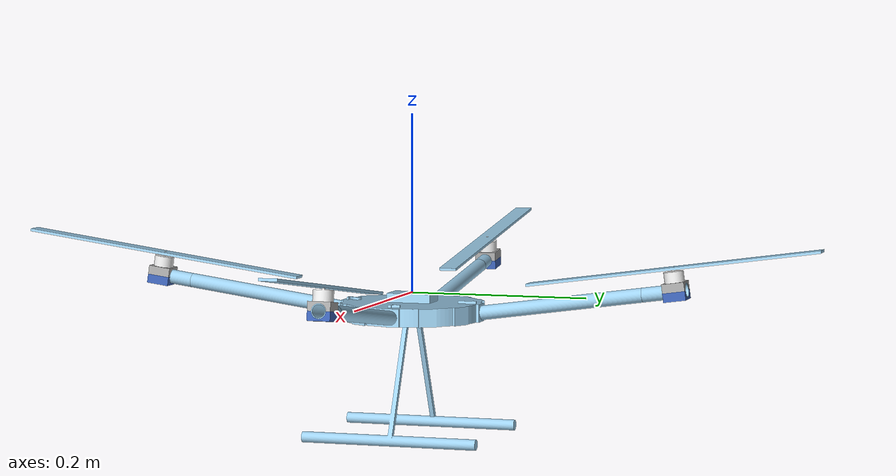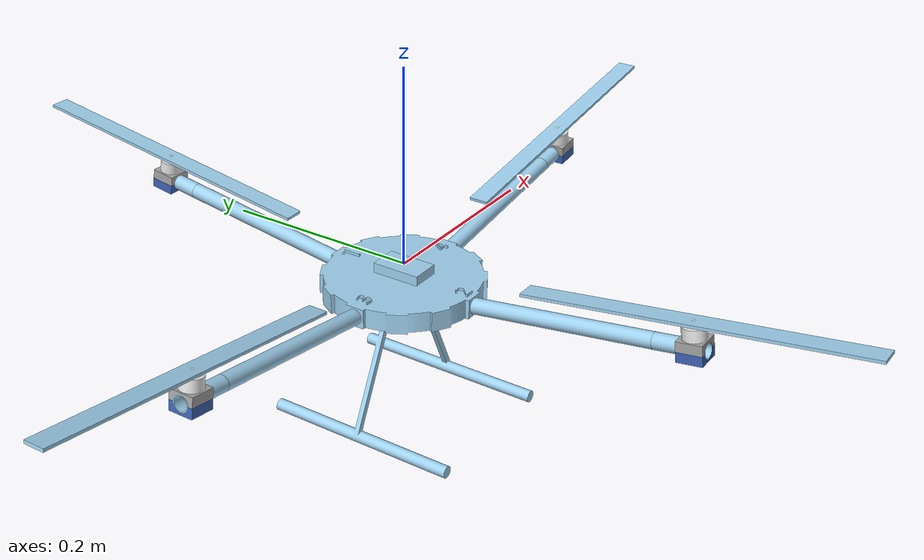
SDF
<?xml version="1.0"?>
<sdf version="1.6">
  <model name="hillstar">
    <link name="quad_plate_arm_subassembly">

      <sensor name="air_pressure_sensor" type="air_pressure">
        <always_on>1</always_on>
        <update_rate>50</update_rate>
        <air_pressure>
          <pressure>
            <noise type="gaussian">
              <mean>0</mean>
              <stddev>0.01</stddev>
            </noise>
          </pressure>
        </air_pressure>
      </sensor>
      <sensor name="imu_sensor" type="imu">
        <parent>quad_plate_arm_subassembly</parent>
        <always_on>1</always_on>
        <update_rate>250</update_rate>
        <imu>
          <angular_velocity>
            <x>
              <noise type="gaussian">
                <mean>0</mean>
                <stddev>0.00018665</stddev>
                <dynamic_bias_stddev>3.8785e-05</dynamic_bias_stddev>
                <dynamic_bias_correlation_time>1000</dynamic_bias_correlation_time>
              </noise>
            </x>
            <y>
              <noise type="gaussian">
                <mean>0</mean>
                <stddev>0.00018665</stddev>
                <dynamic_bias_stddev>3.8785e-05</dynamic_bias_stddev>
                <dynamic_bias_correlation_time>1000</dynamic_bias_correlation_time>
              </noise>
            </y>
            <z>
              <noise type="gaussian">
                <mean>0</mean>
                <stddev>0.00018665</stddev>
                <dynamic_bias_stddev>3.8785e-05</dynamic_bias_stddev>
                <dynamic_bias_correlation_time>1000</dynamic_bias_correlation_time>
              </noise>
            </z>
          </angular_velocity>
          <linear_acceleration>
            <x>
              <noise type="gaussian">
                <mean>0</mean>
                <stddev>0.00186</stddev>
                <dynamic_bias_stddev>0.006</dynamic_bias_stddev>
                <dynamic_bias_correlation_time>300</dynamic_bias_correlation_time>
              </noise>
            </x>
            <y>
              <noise type="gaussian">
                <mean>0</mean>
                <stddev>0.00186</stddev>
                <dynamic_bias_stddev>0.006</dynamic_bias_stddev>
                <dynamic_bias_correlation_time>300</dynamic_bias_correlation_time>
              </noise>
            </y>
            <z>
              <noise type="gaussian">
                <mean>0</mean>
                <stddev>0.00186</stddev>
                <dynamic_bias_stddev>0.006</dynamic_bias_stddev>
                <dynamic_bias_correlation_time>300</dynamic_bias_correlation_time>
              </noise>
            </z>
          </linear_acceleration>
        </imu>
        <plugin name="px4_gazebo_imu_plugin" filename="libgazebo_imu_plugin.so">
          <imu_name>"imu_sensor"</imu_name>
        </plugin>
      </sensor>
      <sensor name="navsat_sensor" type="navsat">
        <parent>quad_plate_arm_subassembly</parent>
        <always_on>1</always_on>
        <update_rate>30</update_rate>
      </sensor>

      <frame name="quad_plate_arm_subassembly_frame">
        <pose>0 0 0 0 -0 0</pose>
      </frame>
      <visual name="quad_plate_arm_subassembly_0_electronics_tray_visual">
        <pose>1.0426410892068930198e-17 1.686536712755228713e-18 -0.010000000000000000208 -1.570796326794896558 2.426671729927918817e-32 -5.8286708792820738094e-16</pose>
        <geometry>
          <mesh>
            <uri>model://hillstar/quad_layout_sdf//electronics_tray.stl</uri>
          </mesh>
        </geometry>
        <material>
          <ambient>0.61568627450980395466 0.81176470588235294379 0.92941176470588238168 1</ambient>
          <diffuse>0.61568627450980395466 0.81176470588235294379 0.92941176470588238168 1</diffuse>
          <specular>0.1 0.1 0.1 1</specular>
          <emissive>0 0 0 0</emissive>
        </material>
      </visual>
      <collision name="quad_plate_arm_subassembly_0_electronics_tray_visual">
        <pose>1.0426410892068930198e-17 1.686536712755228713e-18 -0.010000000000000000208 -1.570796326794896558 2.426671729927918817e-32 -5.8286708792820738094e-16</pose>
        <geometry>
          <mesh>
            <uri>model://hillstar/quad_layout_sdf//electronics_tray.stl</uri>
          </mesh>
        </geometry>
      </collision>

      <visual name="quad_plate_arm_subassembly_1_legs_visual">
        <pose>-2.5459897982298789269e-18 -0.0025000000000000052562 -0.035999999999999927891 1.9428902930940261644e-16 1.7809827686695217859e-16 3.1415926535897926719</pose>
        <geometry>
          <mesh>
            <uri>model://hillstar/quad_layout_sdf//legs.stl</uri>
          </mesh>
        </geometry>
        <material>
          <ambient>0.61568627450980395466 0.81176470588235294379 0.92941176470588238168 1</ambient>
          <diffuse>0.61568627450980395466 0.81176470588235294379 0.92941176470588238168 1</diffuse>
          <specular>0.1 0.1 0.1 1</specular>
          <emissive>0 0 0 0</emissive>
        </material>
      </visual>
      <collision name="quad_plate_arm_subassembly_1_legs_visual">
        <pose>-2.5459897982298789269e-18 -0.0025000000000000052562 -0.035999999999999927891 1.9428902930940261644e-16 1.7809827686695217859e-16 3.1415926535897926719</pose>
        <geometry>
          <mesh>
            <uri>model://hillstar/quad_layout_sdf//legs.stl</uri>
          </mesh>
        </geometry>
      </collision>
      <visual name="quad_plate_arm_subassembly_2_center_plate_visual">
        <pose>-4.429638872090642462e-33 -4.6510602907817071607e-18 -0.010000000000000000208 1.5707963267948990005 -1.1102230246251548148e-16 3.1415926535897926719</pose>
        <geometry>
          <mesh>
            <uri>model://hillstar/quad_layout_sdf//center_plate.stl</uri>
          </mesh>
        </geometry>
        <material>
          <ambient>0.61568627450980395466 0.81176470588235294379 0.92941176470588238168 1</ambient>
          <diffuse>0.61568627450980395466 0.81176470588235294379 0.92941176470588238168 1</diffuse>
          <specular>0.1 0.1 0.1 1</specular>
          <emissive>0 0 0 0</emissive>
        </material>
      </visual>
      <collision name="quad_plate_arm_subassembly_2_center_plate_visual">
        <pose>-4.429638872090642462e-33 -4.6510602907817071607e-18 -0.010000000000000000208 1.5707963267948990005 -1.1102230246251548148e-16 3.1415926535897926719</pose>
        <geometry>
          <mesh>
            <uri>model://hillstar/quad_layout_sdf//center_plate.stl</uri>
          </mesh>
        </geometry>
      </collision>
      <visual name="quad_plate_arm_subassembly_3_arm_tube_visual">
        <pose>0.26369959271719034533 -1.3152048885202173023e-16 0.0057470236776120389374 3.0019663134302465579 2.3592239273284548874e-15 1.570796326794896558</pose>
        <geometry>
          <mesh>
            <uri>model://hillstar/quad_layout_sdf//arm_tube.stl</uri>
          </mesh>
        </geometry>
        <material>
          <ambient>0.61568627450980395466 0.81176470588235294379 0.92941176470588238168 1</ambient>
          <diffuse>0.61568627450980395466 0.81176470588235294379 0.92941176470588238168 1</diffuse>
          <specular>0.1 0.1 0.1 1</specular>
          <emissive>0 0 0 0</emissive>
        </material>
      </visual>
      <collision name="quad_plate_arm_subassembly_3_arm_tube_visual">
        <pose>0.26369959271719034533 -1.3152048885202173023e-16 0.0057470236776120389374 3.0019663134302465579 2.3592239273284548874e-15 1.570796326794896558</pose>
        <geometry>
          <mesh>
            <uri>model://hillstar/quad_layout_sdf//arm_tube.stl</uri>
          </mesh>
        </geometry>
      </collision>
      <visual name="quad_plate_arm_subassembly_4_arm_tube_visual">
        <pose>9.2729227200666873604e-17 0.26369959271719034533 0.0057470236776120458763 3.0019663134302474461 -1.6081226496766373401e-16 3.1415926535897926719</pose>
        <geometry>
          <mesh>
            <uri>model://hillstar/quad_layout_sdf//arm_tube.stl</uri>
          </mesh>
        </geometry>
        <material>
          <ambient>0.61568627450980395466 0.81176470588235294379 0.92941176470588238168 1</ambient>
          <diffuse>0.61568627450980395466 0.81176470588235294379 0.92941176470588238168 1</diffuse>
          <specular>0.1 0.1 0.1 1</specular>
          <emissive>0 0 0 0</emissive>
        </material>
      </visual>
      <collision name="quad_plate_arm_subassembly_4_arm_tube_visual">
        <pose>9.2729227200666873604e-17 0.26369959271719034533 0.0057470236776120458763 3.0019663134302474461 -1.6081226496766373401e-16 3.1415926535897926719</pose>
        <geometry>
          <mesh>
            <uri>model://hillstar/quad_layout_sdf//arm_tube.stl</uri>
          </mesh>
        </geometry>
      </collision>
      <visual name="quad_plate_arm_subassembly_5_arm_tube_visual">
        <pose>-1.125288682431912656e-16 -0.26369959271719034533 0.0057470236776121490924 3.0019663134302465579 2.8327694488239903007e-16 -5.8513504420383324006e-16</pose>
        <geometry>
          <mesh>
            <uri>model://hillstar/quad_layout_sdf//arm_tube.stl</uri>
          </mesh>
        </geometry>
        <material>
          <ambient>0.61568627450980395466 0.81176470588235294379 0.92941176470588238168 1</ambient>
          <diffuse>0.61568627450980395466 0.81176470588235294379 0.92941176470588238168 1</diffuse>
          <specular>0.1 0.1 0.1 1</specular>
          <emissive>0 0 0 0</emissive>
        </material>
      </visual>
      <collision name="quad_plate_arm_subassembly_5_arm_tube_visual">
        <pose>-1.125288682431912656e-16 -0.26369959271719034533 0.0057470236776121490924 3.0019663134302465579 2.8327694488239903007e-16 -5.8513504420383324006e-16</pose>
        <geometry>
          <mesh>
            <uri>model://hillstar/quad_layout_sdf//arm_tube.stl</uri>
          </mesh>
        </geometry>
      </collision>
      <visual name="quad_plate_arm_subassembly_6_arm_tube_visual">
        <pose>-0.26369959271719034533 1.2880560503267202442e-16 0.0057470236776121560313 3.0019663134302465579 -1.3305668935203479585e-16 -1.5707963267948972241</pose>
        <geometry>
          <mesh>
            <uri>model://hillstar/quad_layout_sdf//arm_tube.stl</uri>
          </mesh>
        </geometry>
        <material>
          <ambient>0.61568627450980395466 0.81176470588235294379 0.92941176470588238168 1</ambient>
          <diffuse>0.61568627450980395466 0.81176470588235294379 0.92941176470588238168 1</diffuse>
          <specular>0.1 0.1 0.1 1</specular>
          <emissive>0 0 0 0</emissive>
        </material>
      </visual>
      <collision name="quad_plate_arm_subassembly_6_arm_tube_visual">
        <pose>-0.26369959271719034533 1.2880560503267202442e-16 0.0057470236776121560313 3.0019663134302465579 -1.3305668935203479585e-16 -1.5707963267948972241</pose>
        <geometry>
          <mesh>
            <uri>model://hillstar/quad_layout_sdf//arm_tube.stl</uri>
          </mesh>
        </geometry>
      </collision>
      <inertial>
        <pose frame="quad_plate_arm_subassembly_frame">-6.1462580748651722459e-07 -0.00017942040463946536707 -0.029584627107929153955 0 0 0</pose>
        <mass>0.77207657554993003313</mass>
        <inertia>
          <ixx>0.0031604844513892912591</ixx>
          <ixy>-3.8238647302225609731e-08</ixy>
          <ixz>1.0003578610147444237e-08</ixz>
          <iyy>0.0033332661413842785102</iyy>
          <iyz>-1.7931547486300860873e-05</iyz>
          <izz>0.0043410841365872331055</izz>
        </inertia>
      </inertial>
    </link>
    <link name="motor_subassembly">
      <frame name="motor_subassembly_frame">
        <pose>0 0 0 0 -0 0</pose>
      </frame>
      <visual name="motor_subassembly_0_mount_tube_visual">
        <pose>8.8211977744013656535e-17 0.26369959271719034533 0.0057470236776120311312 -0.13962634015954397682 6.4392935428257951273e-15 -3.1415926535897908956</pose>
        <geometry>
          <mesh>
            <uri>model://hillstar/quad_layout_sdf//mount_tube.stl</uri>
          </mesh>
        </geometry>
        <material>
          <ambient>0.61568627450980395466 0.81176470588235294379 0.92941176470588238168 1</ambient>
          <diffuse>0.61568627450980395466 0.81176470588235294379 0.92941176470588238168 1</diffuse>
          <specular>0.1 0.1 0.1 1</specular>
          <emissive>0 0 0 0</emissive>
        </material>
      </visual>
      <collision name="motor_subassembly_0_mount_tube_visual">
        <pose>8.8211977744013656535e-17 0.26369959271719034533 0.0057470236776120311312 -0.13962634015954397682 6.4392935428257951273e-15 -3.1415926535897908956</pose>
        <geometry>
          <mesh>
            <uri>model://hillstar/quad_layout_sdf//mount_tube.stl</uri>
          </mesh>
        </geometry>
      </collision>
      <visual name="motor_subassembly_1_motor_visual">
        <pose>1.4500233842945824097e-16 0.28873464063764958665 0.007245815064130314842 -0.13962634015955874278 -1.3771378040183450102e-14 -3.1415926535897860106</pose>
        <geometry>
          <mesh>
            <uri>model://hillstar/quad_layout_sdf//motor.stl</uri>
          </mesh>
        </geometry>
        <material>
          <ambient>0.91764705882352937127 0.91764705882352937127 0.91764705882352937127 1</ambient>
          <diffuse>0.91764705882352937127 0.91764705882352937127 0.91764705882352937127 1</diffuse>
          <specular>0.1 0.1 0.1 1</specular>
          <emissive>0 0 0 0</emissive>
        </material>
      </visual>
      <collision name="motor_subassembly_1_motor_visual">
        <pose>1.4500233842945824097e-16 0.28873464063764958665 0.007245815064130314842 -0.13962634015955874278 -1.3771378040183450102e-14 -3.1415926535897860106</pose>
        <geometry>
          <mesh>
            <uri>model://hillstar/quad_layout_sdf//motor.stl</uri>
          </mesh>
        </geometry>
      </collision>
      <visual name="motor_subassembly_2_mount_bottom_visual">
        <pose>9.2128612509324812694e-17 0.2884562944357294545 0.0092263512016136396687 -0.13962634015954550337 2.0539125955566808059e-15 -3.141592653589788231</pose>
        <geometry>
          <mesh>
            <uri>model://hillstar/quad_layout_sdf//mount_bottom.stl</uri>
          </mesh>
        </geometry>
        <material>
          <ambient>0.2313725490196078538 0.38039215686274507888 0.7058823529411765163 1</ambient>
          <diffuse>0.2313725490196078538 0.38039215686274507888 0.7058823529411765163 1</diffuse>
          <specular>0.1 0.1 0.1 1</specular>
          <emissive>0 0 0 0</emissive>
        </material>
      </visual>
      <collision name="motor_subassembly_2_mount_bottom_visual">
        <pose>9.2128612509324812694e-17 0.2884562944357294545 0.0092263512016136396687 -0.13962634015954550337 2.0539125955566808059e-15 -3.141592653589788231</pose>
        <geometry>
          <mesh>
            <uri>model://hillstar/quad_layout_sdf//mount_bottom.stl</uri>
          </mesh>
        </geometry>
      </collision>
      <visual name="motor_subassembly_3_mount_top_visual">
        <pose>1.1281518996034820771e-16 0.28845629443572939898 0.0092263512016136223215 -0.13962634015954725197 2.0539125955565656322e-15 -3.141592653589788231</pose>
        <geometry>
          <mesh>
            <uri>model://hillstar/quad_layout_sdf//mount_top.stl</uri>
          </mesh>
        </geometry>
        <material>
          <ambient>0.64705882352941179736 0.64705882352941179736 0.64705882352941179736 1</ambient>
          <diffuse>0.64705882352941179736 0.64705882352941179736 0.64705882352941179736 1</diffuse>
          <specular>0.1 0.1 0.1 1</specular>
          <emissive>0 0 0 0</emissive>
        </material>
      </visual>
      <collision name="motor_subassembly_3_mount_top_visual">
        <pose>1.1281518996034820771e-16 0.28845629443572939898 0.0092263512016136223215 -0.13962634015954725197 2.0539125955565656322e-15 -3.141592653589788231</pose>
        <geometry>
          <mesh>
            <uri>model://hillstar/quad_layout_sdf//mount_top.stl</uri>
          </mesh>
        </geometry>
      </collision>
      <inertial>
        <pose frame="motor_subassembly_frame">1.8015628869976593456e-16 0.29810053067448233355 0.01575118727399961796 0 0 0</pose>
        <mass>0.11166174231785991333</mass>
        <inertia>
          <ixx>2.0082952529287045803e-05</ixx>
          <ixy>1.1612149890983393133e-21</ixy>
          <ixz>7.1314863429422230699e-20</ixz>
          <iyy>1.614878726894681285e-05</iyy>
          <iyz>-1.1832065003416649547e-06</iyz>
          <izz>1.5934066887227138124e-05</izz>
        </inertia>
      </inertial>
    </link>
    <link name="prop">
      <frame name="prop_frame">
        <pose>0 0 0 0 -0 0</pose>
      </frame>
      <visual name="prop_0_prop_visual">
        <pose>5.0951498899341699441e-16 0.29707697156907691971 0.037703252819636781656 -1.57079632679479686 1.4311699866353377875 1.5707963267950026953</pose>
        <geometry>
          <mesh>
            <uri>model://hillstar/quad_layout_sdf//prop.stl</uri>
          </mesh>
        </geometry>
        <material>
          <ambient>0.61568627450980395466 0.81176470588235294379 0.92941176470588238168 1</ambient>
          <diffuse>0.61568627450980395466 0.81176470588235294379 0.92941176470588238168 1</diffuse>
          <specular>0.1 0.1 0.1 1</specular>
          <emissive>0 0 0 0</emissive>
        </material>
      </visual>
      <collision name="prop_0_prop_visual">
        <pose>5.0951498899341699441e-16 0.29707697156907691971 0.037703252819636781656 -1.57079632679479686 1.4311699866353377875 1.5707963267950026953</pose>
        <geometry>
          <mesh>
            <uri>model://hillstar/quad_layout_sdf//prop.stl</uri>
          </mesh>
        </geometry>
      </collision>
      <inertial>
        <pose frame="prop_frame">4.851341770526906169e-16 0.29728573122051704658 0.036217850716524425947 0 0 0</pose>
        <mass>0.024723492811985364054</mass>
        <inertia>
          <ixx>0.00022462477770931595588</ixx>
          <ixy>1.167288566972933816e-18</ixy>
          <ixz>1.7610046249642690061e-19</ixz>
          <iyy>5.1936008690255026807e-06</iyy>
          <iyz>-3.0952378850752287692e-05</iyz>
          <izz>0.00022108114701970384489</izz>
        </inertia>
      </inertial>
    </link>
    <joint name="rotor0" type="revolute">
      <pose>5.094231404834809462e-16 0.29707697156907691971 0.037703252819636781656 -1.4021364536729796336e-14 0.13962634015955888156 -1.5707963267948912289</pose>
      <parent>motor_subassembly</parent>
      <child>prop</child>
      <axis>
        <xyz>0 0 1</xyz>
        <limit>
          <effort>1</effort>
          <velocity>20</velocity>
        </limit>
      </axis>
    </joint>
    <joint name="tilt0" type="revolute">
      <pose>8.8211977744013656535e-17 0.26369959271719034533 0.0057470236776120311312 -1.7104226669544406736 6.4392935428257951273e-15 -3.1415926535897908956</pose>
      <parent>quad_plate_arm_subassembly</parent>
      <child>motor_subassembly</child>
      <axis>
        <xyz>0 0 1</xyz>
        <limit>
          <effort>1</effort>
          <velocity>20</velocity>
        </limit>
      </axis>
    </joint>
    <link name="motor_subassembly_2">
      <frame name="motor_subassembly_2_frame">
        <pose>0 0 0 0 -0 0</pose>
      </frame>
      <visual name="motor_subassembly_2_0_mount_tube_visual">
        <pose>-1.0693581973587520044e-16 -0.26369959271719028981 0.0057470236776121369493 -0.13962634015954608624 1.4988010832439605407e-15 -2.8167572441173419987e-16</pose>
        <geometry>
          <mesh>
            <uri>model://hillstar/quad_layout_sdf//mount_tube.stl</uri>
          </mesh>
        </geometry>
        <material>
          <ambient>0.61568627450980395466 0.81176470588235294379 0.92941176470588238168 1</ambient>
          <diffuse>0.61568627450980395466 0.81176470588235294379 0.92941176470588238168 1</diffuse>
          <specular>0.1 0.1 0.1 1</specular>
          <emissive>0 0 0 0</emissive>
        </material>
      </visual>
      <collision name="motor_subassembly_2_0_mount_tube_visual">
        <pose>-1.0693581973587520044e-16 -0.26369959271719028981 0.0057470236776121369493 -0.13962634015954608624 1.4988010832439605407e-15 -2.8167572441173419987e-16</pose>
        <geometry>
          <mesh>
            <uri>model://hillstar/quad_layout_sdf//mount_tube.stl</uri>
          </mesh>
        </geometry>
      </collision>
      <visual name="motor_subassembly_2_1_motor_visual">
        <pose>-1.8150222223602479181e-16 -0.28873464063764975318 0.007245815064130293158 -0.13962634015954358824 2.2204460492503840783e-16 -1.8912605856402206795e-14</pose>
        <geometry>
          <mesh>
            <uri>model://hillstar/quad_layout_sdf//motor.stl</uri>
          </mesh>
        </geometry>
        <material>
          <ambient>0.91764705882352937127 0.91764705882352937127 0.91764705882352937127 1</ambient>
          <diffuse>0.91764705882352937127 0.91764705882352937127 0.91764705882352937127 1</diffuse>
          <specular>0.1 0.1 0.1 1</specular>
          <emissive>0 0 0 0</emissive>
        </material>
      </visual>
      <collision name="motor_subassembly_2_1_motor_visual">
        <pose>-1.8150222223602479181e-16 -0.28873464063764975318 0.007245815064130293158 -0.13962634015954358824 2.2204460492503840783e-16 -1.8912605856402206795e-14</pose>
        <geometry>
          <mesh>
            <uri>model://hillstar/quad_layout_sdf//motor.stl</uri>
          </mesh>
        </geometry>
      </collision>
      <visual name="motor_subassembly_2_2_mount_bottom_visual">
        <pose>-1.093039201947344613e-16 -0.28845629443572984307 0.0092263512016138062022 -0.13962634015954353273 5.5511151231257767857e-16 -1.8968117007633862208e-14</pose>
        <geometry>
          <mesh>
            <uri>model://hillstar/quad_layout_sdf//mount_bottom.stl</uri>
          </mesh>
        </geometry>
        <material>
          <ambient>0.2313725490196078538 0.38039215686274507888 0.7058823529411765163 1</ambient>
          <diffuse>0.2313725490196078538 0.38039215686274507888 0.7058823529411765163 1</diffuse>
          <specular>0.1 0.1 0.1 1</specular>
          <emissive>0 0 0 0</emissive>
        </material>
      </visual>
      <collision name="motor_subassembly_2_2_mount_bottom_visual">
        <pose>-1.093039201947344613e-16 -0.28845629443572984307 0.0092263512016138062022 -0.13962634015954353273 5.5511151231257767857e-16 -1.8968117007633862208e-14</pose>
        <geometry>
          <mesh>
            <uri>model://hillstar/quad_layout_sdf//mount_bottom.stl</uri>
          </mesh>
        </geometry>
      </collision>
      <visual name="motor_subassembly_2_3_mount_top_visual">
        <pose>-1.1485503531786022428e-16 -0.28845629443572962103 0.009226351201613719466 -0.1396263401595466136 -4.4408920985006478554e-16 -1.8787705766132334223e-14</pose>
        <geometry>
          <mesh>
            <uri>model://hillstar/quad_layout_sdf//mount_top.stl</uri>
          </mesh>
        </geometry>
        <material>
          <ambient>0.64705882352941179736 0.64705882352941179736 0.64705882352941179736 1</ambient>
          <diffuse>0.64705882352941179736 0.64705882352941179736 0.64705882352941179736 1</diffuse>
          <specular>0.1 0.1 0.1 1</specular>
          <emissive>0 0 0 0</emissive>
        </material>
      </visual>
      <collision name="motor_subassembly_2_3_mount_top_visual">
        <pose>-1.1485503531786022428e-16 -0.28845629443572962103 0.009226351201613719466 -0.1396263401595466136 -4.4408920985006478554e-16 -1.8787705766132334223e-14</pose>
        <geometry>
          <mesh>
            <uri>model://hillstar/quad_layout_sdf//mount_top.stl</uri>
          </mesh>
        </geometry>
      </collision>
      <inertial>
        <pose frame="motor_subassembly_2_frame">-1.1755050186215506707e-16 -0.29810053067448250008 0.015751187273999912863 0 0 0</pose>
        <mass>0.11166174231785991333</mass>
        <inertia>
          <ixx>2.0082952529287509977e-05</ixx>
          <ixy>-9.7453422952255673381e-20</ixy>
          <ixz>1.3191310848233248902e-20</ixz>
          <iyy>1.6148787268947094065e-05</iyy>
          <iyz>1.1832065003416137092e-06</iyz>
          <izz>1.5934066887227483713e-05</izz>
        </inertia>
      </inertial>
    </link>
    <link name="prop_2">
      <frame name="prop_2_frame">
        <pose>0 0 0 0 -0 0</pose>
      </frame>
      <visual name="prop_2_0_prop_visual">
        <pose>-1.0810466104008906351e-16 -0.29707697156907741931 0.037703252819637787796 -1.5707963267949045516 1.4311699866353515542 -1.5707963267948961139</pose>
        <geometry>
          <mesh>
            <uri>model://hillstar/quad_layout_sdf//prop.stl</uri>
          </mesh>
        </geometry>
        <material>
          <ambient>0.61568627450980395466 0.81176470588235294379 0.92941176470588238168 1</ambient>
          <diffuse>0.61568627450980395466 0.81176470588235294379 0.92941176470588238168 1</diffuse>
          <specular>0.1 0.1 0.1 1</specular>
          <emissive>0 0 0 0</emissive>
        </material>
      </visual>
      <collision name="prop_2_0_prop_visual">
        <pose>-1.0810466104008906351e-16 -0.29707697156907741931 0.037703252819637787796 -1.5707963267949045516 1.4311699866353515542 -1.5707963267948961139</pose>
        <geometry>
          <mesh>
            <uri>model://hillstar/quad_layout_sdf//prop.stl</uri>
          </mesh>
        </geometry>
      </collision>
      <inertial>
        <pose frame="prop_2_frame">-1.057756882154955986e-16 -0.29728573122051754618 0.036217850716525369636 0 0 0</pose>
        <mass>0.024723492811985364054</mass>
        <inertia>
          <ixx>0.00022462477770932734</ixx>
          <ixy>-4.0922419324439419315e-18</ixy>
          <ixz>-2.6276671836410515555e-19</ixz>
          <iyy>5.1936008690250063194e-06</iyy>
          <iyz>3.0952378850751806577e-05</iyz>
          <izz>0.00022108114701972243895</izz>
        </inertia>
      </inertial>
    </link>
    <joint name="rotor1" type="revolute">
      <pose>-1.080128125301530153e-16 -0.29707697156907741931 0.037703252819637787796 1.1211338219114685851e-15 0.13962634015954783484 1.5707963267948996666</pose>
      <parent>motor_subassembly_2</parent>
      <child>prop_2</child>
      <axis>
        <xyz>0 0 1</xyz>
        <limit>
          <effort>1</effort>
          <velocity>20</velocity>
        </limit>
      </axis>
    </joint>
    <joint name="tilt1" type="revolute">
      <pose>-1.0693581973587520044e-16 -0.26369959271719028981 0.0057470236776121369493 -1.710422666954442672 1.4988010832439605407e-15 -2.8167572441173419987e-16</pose>
      <parent>quad_plate_arm_subassembly</parent>
      <child>motor_subassembly_2</child>
      <axis>
        <xyz>0 0 1</xyz>
        <limit>
          <effort>1</effort>
          <velocity>20</velocity>
        </limit>
      </axis>
    </joint>
    <link name="motor_subassembly_3">
      <frame name="motor_subassembly_3_frame">
        <pose>0 0 0 0 -0 0</pose>
      </frame>
      <visual name="motor_subassembly_3_0_mount_tube_visual">
        <pose>-0.26369959271719028981 1.1722743512342384814e-16 0.0057470236776121803174 -0.13962634015954744626 1.0269562977782692082e-15 -1.570796326794896558</pose>
        <geometry>
          <mesh>
            <uri>model://hillstar/quad_layout_sdf//mount_tube.stl</uri>
          </mesh>
        </geometry>
        <material>
          <ambient>0.61568627450980395466 0.81176470588235294379 0.92941176470588238168 1</ambient>
          <diffuse>0.61568627450980395466 0.81176470588235294379 0.92941176470588238168 1</diffuse>
          <specular>0.1 0.1 0.1 1</specular>
          <emissive>0 0 0 0</emissive>
        </material>
      </visual>
      <collision name="motor_subassembly_3_0_mount_tube_visual">
        <pose>-0.26369959271719028981 1.1722743512342384814e-16 0.0057470236776121803174 -0.13962634015954744626 1.0269562977782692082e-15 -1.570796326794896558</pose>
        <geometry>
          <mesh>
            <uri>model://hillstar/quad_layout_sdf//mount_tube.stl</uri>
          </mesh>
        </geometry>
      </collision>
      <visual name="motor_subassembly_3_1_motor_visual">
        <pose>-0.28873464063764964216 -8.3989372298563775837e-17 0.0072458150641306739298 -0.13962634015953950817 1.915134717478368211e-15 -1.57079632679489678</pose>
        <geometry>
          <mesh>
            <uri>model://hillstar/quad_layout_sdf//motor.stl</uri>
          </mesh>
        </geometry>
        <material>
          <ambient>0.91764705882352937127 0.91764705882352937127 0.91764705882352937127 1</ambient>
          <diffuse>0.91764705882352937127 0.91764705882352937127 0.91764705882352937127 1</diffuse>
          <specular>0.1 0.1 0.1 1</specular>
          <emissive>0 0 0 0</emissive>
        </material>
      </visual>
      <collision name="motor_subassembly_3_1_motor_visual">
        <pose>-0.28873464063764964216 -8.3989372298563775837e-17 0.0072458150641306739298 -0.13962634015953950817 1.915134717478368211e-15 -1.57079632679489678</pose>
        <geometry>
          <mesh>
            <uri>model://hillstar/quad_layout_sdf//motor.stl</uri>
          </mesh>
        </geometry>
      </collision>
      <visual name="motor_subassembly_3_2_mount_bottom_visual">
        <pose>-0.28845629443572934347 1.0794518835740679196e-16 0.0092263512016138131411 -0.13962634015954672462 1.7488713791385803642e-15 -1.57079632679489678</pose>
        <geometry>
          <mesh>
            <uri>model://hillstar/quad_layout_sdf//mount_bottom.stl</uri>
          </mesh>
        </geometry>
        <material>
          <ambient>0.2313725490196078538 0.38039215686274507888 0.7058823529411765163 1</ambient>
          <diffuse>0.2313725490196078538 0.38039215686274507888 0.7058823529411765163 1</diffuse>
          <specular>0.1 0.1 0.1 1</specular>
          <emissive>0 0 0 0</emissive>
        </material>
      </visual>
      <collision name="motor_subassembly_3_2_mount_bottom_visual">
        <pose>-0.28845629443572934347 1.0794518835740679196e-16 0.0092263512016138131411 -0.13962634015954672462 1.7488713791385803642e-15 -1.57079632679489678</pose>
        <geometry>
          <mesh>
            <uri>model://hillstar/quad_layout_sdf//mount_bottom.stl</uri>
          </mesh>
        </geometry>
      </collision>
      <visual name="motor_subassembly_3_3_mount_top_visual">
        <pose>-0.2884562944357294545 -1.2010940006389342202e-17 0.009226351201613951919 -0.13962634015954095146 1.9151347174783678165e-15 -1.57079632679489678</pose>
        <geometry>
          <mesh>
            <uri>model://hillstar/quad_layout_sdf//mount_top.stl</uri>
          </mesh>
        </geometry>
        <material>
          <ambient>0.64705882352941179736 0.64705882352941179736 0.64705882352941179736 1</ambient>
          <diffuse>0.64705882352941179736 0.64705882352941179736 0.64705882352941179736 1</diffuse>
          <specular>0.1 0.1 0.1 1</specular>
          <emissive>0 0 0 0</emissive>
        </material>
      </visual>
      <collision name="motor_subassembly_3_3_mount_top_visual">
        <pose>-0.2884562944357294545 -1.2010940006389342202e-17 0.009226351201613951919 -0.13962634015954095146 1.9151347174783678165e-15 -1.57079632679489678</pose>
        <geometry>
          <mesh>
            <uri>model://hillstar/quad_layout_sdf//mount_top.stl</uri>
          </mesh>
        </geometry>
      </collision>
      <inertial>
        <pose frame="motor_subassembly_3_frame">-0.29810053067448250008 4.4761925134790367899e-17 0.015751187274000016947 0 0 0</pose>
        <mass>0.11166174231785991333</mass>
        <inertia>
          <ixx>1.6148787268947334623e-05</ixx>
          <ixy>-4.557099701407576892e-21</ixy>
          <ixz>1.1832065003416776602e-06</ixz>
          <iyy>2.0082952529287618397e-05</iyy>
          <iyz>5.5346169655793607426e-20</iyz>
          <izz>1.5934066887227446444e-05</izz>
        </inertia>
      </inertial>
    </link>
    <link name="prop_3">
      <frame name="prop_3_frame">
        <pose>0 0 0 0 -0 0</pose>
      </frame>
      <visual name="prop_3_0_prop_visual">
        <pose>-0.29707697156907764136 7.544859064336197574e-17 0.037703252819637815552 -1.5707963267949098807 1.4311699866353593258 -3.1415926535897527039</pose>
        <geometry>
          <mesh>
            <uri>model://hillstar/quad_layout_sdf//prop.stl</uri>
          </mesh>
        </geometry>
        <material>
          <ambient>0.61568627450980395466 0.81176470588235294379 0.92941176470588238168 1</ambient>
          <diffuse>0.61568627450980395466 0.81176470588235294379 0.92941176470588238168 1</diffuse>
          <specular>0.1 0.1 0.1 1</specular>
          <emissive>0 0 0 0</emissive>
        </material>
      </visual>
      <collision name="prop_3_0_prop_visual">
        <pose>-0.29707697156907764136 7.544859064336197574e-17 0.037703252819637815552 -1.5707963267949098807 1.4311699866353593258 -3.1415926535897527039</pose>
        <geometry>
          <mesh>
            <uri>model://hillstar/quad_layout_sdf//prop.stl</uri>
          </mesh>
        </geometry>
      </collision>
      <inertial>
        <pose frame="prop_3_frame">-0.29728573122051771271 6.4743100522619784518e-17 0.036217850716525418209 0 0 0</pose>
        <mass>0.024723492811985364054</mass>
        <inertia>
          <ixx>5.1936008690244150904e-06</ixx>
          <ixy>2.1384046967785722349e-19</ixy>
          <ixz>3.0952378850749306136e-05</ixz>
          <iyy>0.00022462477770932983367</iyy>
          <iyz>1.6749649067333604467e-18</iyz>
          <izz>0.00022108114701971726189</izz>
        </inertia>
      </inertial>
    </link>
    <joint name="rotor2" type="revolute">
      <pose>-0.29707697156907764136 7.5356742133425927534e-17 0.037703252819637815552 1.8641085939145440481e-15 0.13962634015954203393 5.9636439796763860671e-16</pose>
      <parent>motor_subassembly_3</parent>
      <child>prop_3</child>
      <axis>
        <xyz>0 0 1</xyz>
        <limit>
          <effort>1</effort>
          <velocity>20</velocity>
        </limit>
      </axis>
    </joint>
    <joint name="tilt2" type="revolute">
      <pose>-0.26369959271719028981 1.1722743512342384814e-16 0.0057470236776121803174 -1.7104226669544440043 1.0269562977782692082e-15 -1.570796326794896558</pose>
      <parent>quad_plate_arm_subassembly</parent>
      <child>motor_subassembly_3</child>
      <axis>
        <xyz>0 0 1</xyz>
        <limit>
          <effort>1</effort>
          <velocity>20</velocity>
        </limit>
      </axis>
    </joint>
    <link name="motor_subassembly_4">
      <frame name="motor_subassembly_4_frame">
        <pose>0 0 0 0 -0 0</pose>
      </frame>
      <visual name="motor_subassembly_4_0_mount_tube_visual">
        <pose>0.26369959271719034533 -1.1621318268766980023e-16 0.0057470236776120337333 -0.13962634015954558664 1.9151347174783686054e-15 1.5707963267948932273</pose>
        <geometry>
          <mesh>
            <uri>model://hillstar/quad_layout_sdf//mount_tube.stl</uri>
          </mesh>
        </geometry>
        <material>
          <ambient>0.61568627450980395466 0.81176470588235294379 0.92941176470588238168 1</ambient>
          <diffuse>0.61568627450980395466 0.81176470588235294379 0.92941176470588238168 1</diffuse>
          <specular>0.1 0.1 0.1 1</specular>
          <emissive>0 0 0 0</emissive>
        </material>
      </visual>
      <collision name="motor_subassembly_4_0_mount_tube_visual">
        <pose>0.26369959271719034533 -1.1621318268766980023e-16 0.0057470236776120337333 -0.13962634015954558664 1.9151347174783686054e-15 1.5707963267948932273</pose>
        <geometry>
          <mesh>
            <uri>model://hillstar/quad_layout_sdf//mount_tube.stl</uri>
          </mesh>
        </geometry>
      </collision>
      <visual name="motor_subassembly_4_1_motor_visual">
        <pose>0.28873464063764991971 -8.9410131687664278633e-17 0.0072458150641305230089 -0.13962634015954375477 -9.5868341907320933469e-16 1.5707963267948925612</pose>
        <geometry>
          <mesh>
            <uri>model://hillstar/quad_layout_sdf//motor.stl</uri>
          </mesh>
        </geometry>
        <material>
          <ambient>0.91764705882352937127 0.91764705882352937127 0.91764705882352937127 1</ambient>
          <diffuse>0.91764705882352937127 0.91764705882352937127 0.91764705882352937127 1</diffuse>
          <specular>0.1 0.1 0.1 1</specular>
          <emissive>0 0 0 0</emissive>
        </material>
      </visual>
      <collision name="motor_subassembly_4_1_motor_visual">
        <pose>0.28873464063764991971 -8.9410131687664278633e-17 0.0072458150641305230089 -0.13962634015954375477 -9.5868341907320933469e-16 1.5707963267948925612</pose>
        <geometry>
          <mesh>
            <uri>model://hillstar/quad_layout_sdf//motor.stl</uri>
          </mesh>
        </geometry>
      </collision>
      <visual name="motor_subassembly_4_2_mount_bottom_visual">
        <pose>0.28845629443572978756 -8.9432589347817931778e-17 0.0092263512016137402827 -0.13962634015954589195 3.0808688933347892837e-15 1.5707963267948921171</pose>
        <geometry>
          <mesh>
            <uri>model://hillstar/quad_layout_sdf//mount_bottom.stl</uri>
          </mesh>
        </geometry>
        <material>
          <ambient>0.2313725490196078538 0.38039215686274507888 0.7058823529411765163 1</ambient>
          <diffuse>0.2313725490196078538 0.38039215686274507888 0.7058823529411765163 1</diffuse>
          <specular>0.1 0.1 0.1 1</specular>
          <emissive>0 0 0 0</emissive>
        </material>
      </visual>
      <collision name="motor_subassembly_4_2_mount_bottom_visual">
        <pose>0.28845629443572978756 -8.9432589347817931778e-17 0.0092263512016137402827 -0.13962634015954589195 3.0808688933347892837e-15 1.5707963267948921171</pose>
        <geometry>
          <mesh>
            <uri>model://hillstar/quad_layout_sdf//mount_bottom.stl</uri>
          </mesh>
        </geometry>
      </collision>
      <visual name="motor_subassembly_4_3_mount_top_visual">
        <pose>0.28845629443572978756 -8.5269253005473634194e-17 0.0092263512016137472216 -0.13962634015954566991 3.1086244689504170139e-15 1.5707963267948921171</pose>
        <geometry>
          <mesh>
            <uri>model://hillstar/quad_layout_sdf//mount_top.stl</uri>
          </mesh>
        </geometry>
        <material>
          <ambient>0.64705882352941179736 0.64705882352941179736 0.64705882352941179736 1</ambient>
          <diffuse>0.64705882352941179736 0.64705882352941179736 0.64705882352941179736 1</diffuse>
          <specular>0.1 0.1 0.1 1</specular>
          <emissive>0 0 0 0</emissive>
        </material>
      </visual>
      <collision name="motor_subassembly_4_3_mount_top_visual">
        <pose>0.28845629443572978756 -8.5269253005473634194e-17 0.0092263512016137472216 -0.13962634015954566991 3.1086244689504170139e-15 1.5707963267948921171</pose>
        <geometry>
          <mesh>
            <uri>model://hillstar/quad_layout_sdf//mount_top.stl</uri>
          </mesh>
        </geometry>
      </collision>
      <inertial>
        <pose frame="motor_subassembly_4_frame">0.29810053067448266662 -7.7184183284497755173e-17 0.015751187273999784494 0 0 0</pose>
        <mass>0.11166174231785991333</mass>
        <inertia>
          <ixx>1.614878726894695854e-05</ixx>
          <ixy>3.3992971585437347816e-20</ixy>
          <ixz>-1.1832065003416435671e-06</ixz>
          <iyy>2.0082952529287425274e-05</iyy>
          <iyz>-5.4453690775056008185e-21</iyz>
          <izz>1.5934066887227334635e-05</izz>
        </inertia>
      </inertial>
    </link>
    <link name="prop_4">
      <frame name="prop_4_frame">
        <pose>0 0 0 0 -0 0</pose>
      </frame>
      <visual name="prop_4_0_prop_visual">
        <pose>0.29707697156907775238 -4.5743556096839887264e-17 0.03770325281963719799 -1.5707963267948850117 1.4311699866353524424 -1.0747854142498178663e-14</pose>
        <geometry>
          <mesh>
            <uri>model://hillstar/quad_layout_sdf//prop.stl</uri>
          </mesh>
        </geometry>
        <material>
          <ambient>0.61568627450980395466 0.81176470588235294379 0.92941176470588238168 1</ambient>
          <diffuse>0.61568627450980395466 0.81176470588235294379 0.92941176470588238168 1</diffuse>
          <specular>0.1 0.1 0.1 1</specular>
          <emissive>0 0 0 0</emissive>
        </material>
      </visual>
      <collision name="prop_4_0_prop_visual">
        <pose>0.29707697156907775238 -4.5743556096839887264e-17 0.03770325281963719799 -1.5707963267948850117 1.4311699866353524424 -1.0747854142498178663e-14</pose>
        <geometry>
          <mesh>
            <uri>model://hillstar/quad_layout_sdf//prop.stl</uri>
          </mesh>
        </geometry>
      </collision>
      <inertial>
        <pose frame="prop_4_frame">0.29728573122051787925 -4.5750691832204045754e-17 0.036217850716524793708 0 0 0</pose>
        <mass>0.024723492811985364054</mass>
        <inertia>
          <ixx>5.1936008690249114517e-06</ixx>
          <ixy>-6.3993136141418226815e-19</ixy>
          <ixz>-3.0952378850751034083e-05</ixz>
          <iyy>0.00022462477770932544265</iyy>
          <iyz>6.9817266183817767974e-19</iyz>
          <izz>0.00022108114701971850872</izz>
        </inertia>
      </inertial>
    </link>
    <joint name="rotor3" type="revolute">
      <pose>0.29707697156907775238 -4.5651707586903832896e-17 0.03770325281963719799 -1.6408531037040997955e-15 0.13962634015953998001 3.1415926535897868987</pose>
      <parent>motor_subassembly_4</parent>
      <child>prop_4</child>
      <axis>
        <xyz>0 0 1</xyz>
        <limit>
          <effort>1</effort>
          <velocity>20</velocity>
        </limit>
      </axis>
    </joint>
    <joint name="tilt3" type="revolute">
      <pose>0.26369959271719034533 -1.1621318268766980023e-16 0.0057470236776120337333 -1.7104226669544422279 1.9151347174783686054e-15 1.5707963267948932273</pose>
      <parent>quad_plate_arm_subassembly</parent>
      <child>motor_subassembly_4</child>
      <axis>
        <xyz>0 0 1</xyz>
        <limit>
          <effort>1</effort>
          <velocity>20</velocity>
        </limit>
      </axis>
    </joint>

    <plugin filename="gz-sim-multicopter-motor-model-system" name="gz::sim::systems::MulticopterMotorModel">
      <jointName>rotor0</jointName>
      <linkName>prop</linkName>
      <turningDirection>cw</turningDirection>
      <timeConstantUp>0.0125</timeConstantUp>
      <timeConstantDown>0.025</timeConstantDown>
      <maxRotVelocity>1000.0</maxRotVelocity>
      <motorConstant>8.54858e-06</motorConstant>
      <momentConstant>0.016</momentConstant>
      <commandSubTopic>command/motor_speed</commandSubTopic>
      <motorNumber>0</motorNumber>
      <rotorDragCoefficient>8.06428e-05</rotorDragCoefficient>
      <rollingMomentCoefficient>1e-06</rollingMomentCoefficient>
      <rotorVelocitySlowdownSim>10</rotorVelocitySlowdownSim>
      <motorType>velocity</motorType>
    </plugin>

        <plugin filename="gz-sim-multicopter-motor-model-system" name="gz::sim::systems::MulticopterMotorModel">
      <jointName>rotor1</jointName>
      <linkName>prop_2</linkName>
      <turningDirection>cw</turningDirection>
      <timeConstantUp>0.0125</timeConstantUp>
      <timeConstantDown>0.025</timeConstantDown>
      <maxRotVelocity>1000.0</maxRotVelocity>
      <motorConstant>8.54858e-06</motorConstant>
      <momentConstant>0.016</momentConstant>
      <commandSubTopic>command/motor_speed</commandSubTopic>
      <motorNumber>1</motorNumber>
      <rotorDragCoefficient>8.06428e-05</rotorDragCoefficient>
      <rollingMomentCoefficient>1e-06</rollingMomentCoefficient>
      <rotorVelocitySlowdownSim>10</rotorVelocitySlowdownSim>
      <motorType>velocity</motorType>
    </plugin>

    <plugin filename="gz-sim-multicopter-motor-model-system" name="gz::sim::systems::MulticopterMotorModel">
      <jointName>rotor2</jointName>
      <linkName>prop_3</linkName>
      <turningDirection>cw</turningDirection>
      <timeConstantUp>0.0125</timeConstantUp>
      <timeConstantDown>0.025</timeConstantDown>
      <maxRotVelocity>1000.0</maxRotVelocity>
      <motorConstant>8.54858e-06</motorConstant>
      <momentConstant>0.016</momentConstant>
      <commandSubTopic>command/motor_speed</commandSubTopic>
      <motorNumber>2</motorNumber>
      <rotorDragCoefficient>8.06428e-05</rotorDragCoefficient>
      <rollingMomentCoefficient>1e-06</rollingMomentCoefficient>
      <rotorVelocitySlowdownSim>10</rotorVelocitySlowdownSim>
      <motorType>velocity</motorType>
    </plugin>

        <plugin filename="gz-sim-multicopter-motor-model-system" name="gz::sim::systems::MulticopterMotorModel">
      <jointName>rotor3</jointName>
      <linkName>prop_4</linkName>
      <turningDirection>cw</turningDirection>
      <timeConstantUp>0.0125</timeConstantUp>
      <timeConstantDown>0.025</timeConstantDown>
      <maxRotVelocity>1000.0</maxRotVelocity>
      <motorConstant>8.54858e-06</motorConstant>
      <momentConstant>0.016</momentConstant>
      <commandSubTopic>command/motor_speed</commandSubTopic>
      <motorNumber>3</motorNumber>
      <rotorDragCoefficient>8.06428e-05</rotorDragCoefficient>
      <rollingMomentCoefficient>1e-06</rollingMomentCoefficient>
      <rotorVelocitySlowdownSim>10</rotorVelocitySlowdownSim>
      <motorType>velocity</motorType>
    </plugin>

  </model>
</sdf>
